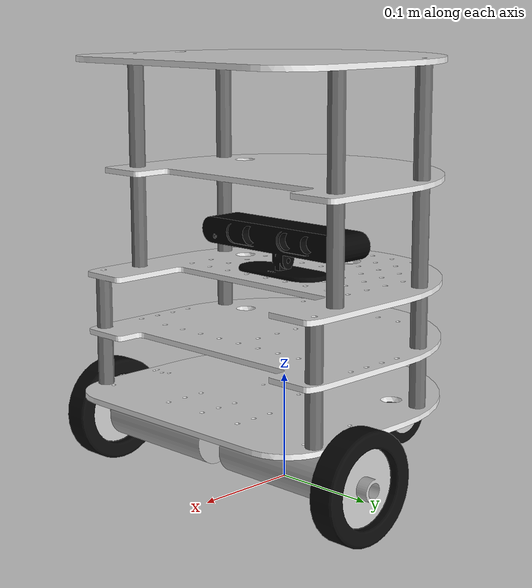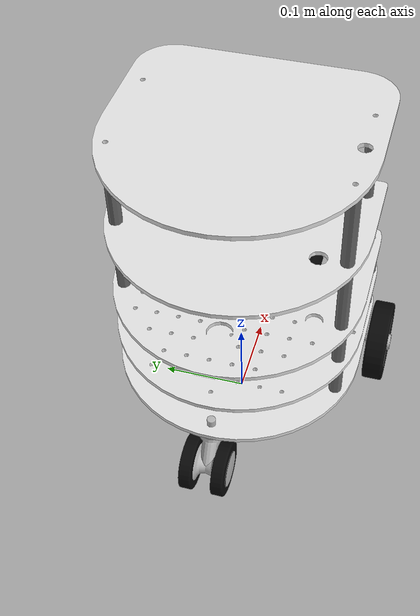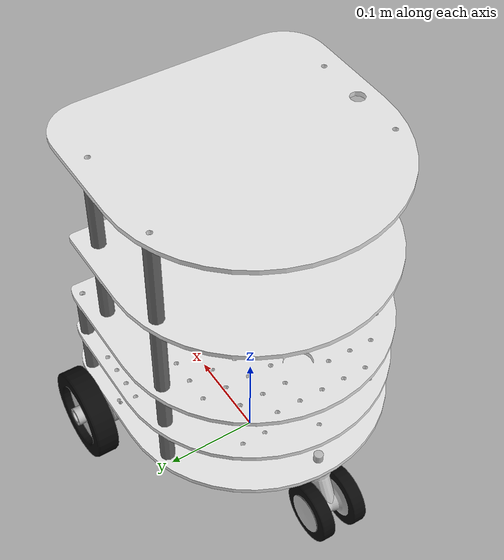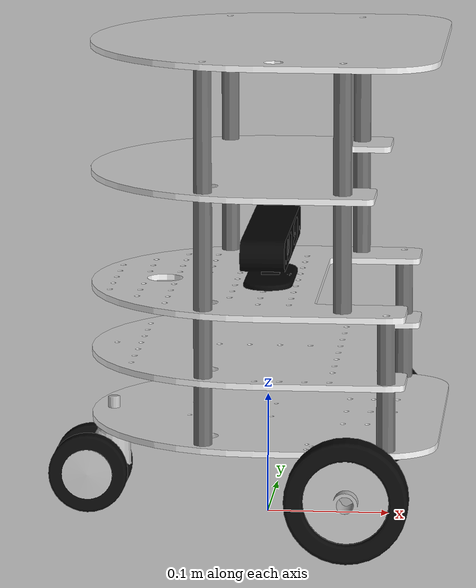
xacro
<?xml version="1.0"?>

<robot xmlns:xacro="http://www.ros.org/wiki/xacro" name="tortuga_description">
  <xacro:include filename="$(find tortuga_description)/urdf/tortuga_base.xacro"/>
  <xacro:include filename="$(find tortuga_description)/urdf/tortuga_motors.xacro"/>
  <xacro:include filename="$(find tortuga_description)/urdf/tortuga_wheels.xacro"/>
  <xacro:include filename="$(find tortuga_description)/urdf/tortuga_sensors.xacro"/>

  <xacro:property name="PI" value="3.141592654" />
  <link name="base_footprint"/>

  <tortuga_base_macro name="base" parent="base_footprint"/>

  <tortuga_motor_macro parent="base_left_motor_out" name="left_motor">
      <axis xyz="0 0 -1"/>
  </tortuga_motor_macro>
  <tortuga_motor_macro parent="base_right_motor_out" name="right_motor">
      <axis xyz="0 0 1"/>
  </tortuga_motor_macro>

  <tortuga_wheel_macro parent="left_motor_out" name="left_wheel"/>
  <tortuga_wheel_macro parent="right_motor_out" name="right_wheel"/>

  <tortuga_xtion_macro name="xtion_cam" parent="base_link">
      <origin xyz="0.02 0.0 -0.0418" rpy="0.0 0.0 0.0"/>
  </tortuga_xtion_macro>
  <tortuga_back_wheel_macro parent="base_back_wheel_out" name="back_wheel"/>

</robot>

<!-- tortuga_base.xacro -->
<robot name="tortuga_base" xmlns:xacro="http://ros.org/wiki/xacro">

  <xacro:macro name="tortuga_base_macro" params="name parent">
    <link name="${name}_link">
      <visual>
        <geometry>
          <mesh filename="package://tortuga_description/meshes/tortuga_base.dae"/>
        </geometry>
      </visual>
      <collision>
        <geometry>
	  <cylinder radius="0.146" length="0.314"/>
	</geometry>
      </collision>
      <inertial>
	<origin xyz="0 0 -0.2" rpy="0 0 0" />
      <mass
	value="1000" /> <!-- TODO FIND OUT WHY THE MASS MUST BE THAT HIGH -->
      <inertia
        ixx="0.1354533" ixy="0" ixz="0"
        iyy="0.1354533" iyz="0"
        izz="-0.10658" />
    </inertial>
    </link>

    <joint name="${name}_main_joint" type="fixed">
      <origin xyz="0.0 0.0 0.2385" rpy="0.0 0.0 0"/>
      <parent link="${parent}"/>
      <child link="${name}_link"/>
    </joint>

    <link name="${name}_left_motor_out"/>
    <link name="${name}_right_motor_out"/>
    <!-- FIXME -->
    <link name="${name}_back_wheel_out">
      <inertial>
	<origin xyz="0 0 0" rpy="0 0 0" />
	<mass
	  value="0.001" />
	<inertia
	  ixx="0.000000001" ixy="0" ixz="0"
	  iyy="0.000000001" iyz="0"
	  izz="0.000000001" />
      </inertial>
    </link>

    <joint name="${name}_left_motor_joint" type="fixed">
      <origin xyz="0.075 -0.08 -0.188" rpy="0.0 0.0 0.0"/>
      <parent link="${name}_link"/>
      <child link="${name}_left_motor_out"/>
    </joint>

    <joint name="${name}_right_motor_joint" type="fixed">
      <origin xyz="0.075 0.08 -0.188" rpy="0.0 0.0 ${PI}"/>
      <parent link="${name}_link"/>
      <child link="${name}_right_motor_out"/>
    </joint>

    <joint name="${name}_back_wheel_joint" type="fixed">
      <origin xyz="-0.128 0.0 -0.1442" rpy="0.0 0.0 0.0"/>
      <parent link="${name}_link"/>
      <child link="${name}_back_wheel_out"/>
    </joint>
  </xacro:macro>
</robot>

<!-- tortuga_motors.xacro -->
<robot name="tortuga_motors" xmlns:xacro="http://ros.org/wiki/xacro">

  <xacro:macro name="tortuga_motor_macro" params="name parent *axis">
    <link name="${name}_in">
      <visual>
        <geometry>
          <mesh filename="package://tortuga_description/meshes/tortuga_motor.dae"  />
        </geometry>
      </visual>
      <inertial>
	<origin xyz="0 0 0" rpy="0 0 0" />
	<mass
	  value="0.001" />
	<inertia
	  ixx="0.000000001" ixy="0" ixz="0"
	  iyy="0.000000001" iyz="0"
	  izz="0.000000001" />
      </inertial>
    </link>
    <joint name="${name}_in_joint" type="fixed">
      <origin xyz="0.0 0.0 0.0" rpy="0.0 0.0 0.0"/>
      <parent link="${parent}"/>
      <child link="${name}_in"/>
    </joint>
    <link name="${name}_out"/>

    <joint name="${name}_out_joint" type="fixed">
      <origin xyz="0.0 -0.08 0.0" rpy="${0.5 * PI} 0.0 0.0"/>
      <parent link="${name}_in"/>
      <child link="${name}_out"/>
    </joint>
  </xacro:macro>
</robot>

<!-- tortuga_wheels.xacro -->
<robot name="tortuga_motors" xmlns:xacro="http://ros.org/wiki/xacro">

  <xacro:macro name="tortuga_wheel_macro" params="name parent">
    <link name="${name}_link">

      <visual>
        <geometry>
          <mesh filename="package://tortuga_description/meshes/tortuga_wheel.dae"  />
        </geometry>
      </visual>
      <collision>
        <geometry>

	  <cylinder radius="0.05" length="0.03"/>
	</geometry>
      </collision>
      <inertial>
	<origin xyz="0 0 0" rpy="0 0 0" />
      <mass
        value="0.1" />
      <inertia
        ixx="0.00007" ixy="0" ixz="0"
        iyy="0.00007" iyz="0"
        izz="0.000125" />
    </inertial>
    </link>
    <gazebo reference="${name}_link">
    <mu1 value="200.0"/>
    <mu2 value="100.0"/>
    <kp value="1000000.0"/>
    <kd value="1.0"/>
  </gazebo>
    <joint name="${name}_in_joint" type="fixed">
      <origin xyz="0.0 0.0 0.0" rpy="0.0 0.0 0.0"/>
      <parent link="${parent}"/>
      <child link="${name}_link"/>
    </joint>

  </xacro:macro>

  <xacro:macro name="tortuga_back_wheel_macro1" params="name parent">

    <link name="${name}_link">
      <visual>
        <geometry>
          <mesh filename="package://tortuga_description/meshes/tortuga_front_wheel.dae"  />
        </geometry>
      </visual>
      <collision>
        <geometry>

	  <cylinder radius="0.0325" length="0.056"/>
	</geometry>
      </collision>
      <inertial>
	<origin xyz="0 0 0" rpy="0 0 0" />
	<mass
	  value="0.1" />
	<inertia
	  ixx="0.00005253" ixy="0" ixz="0"
	  iyy="0.00005253" iyz="0"
	  izz="0.0000528" />
      </inertial>
    </link>
    <joint name="${name}_wheel_joint" type="continuous">

        <origin xyz="-0.02 0.0 -0.06" rpy="${0.5 *PI} 0.0 0.0"/>
      <parent link="${parent}"/>
      <child link="${name}_link"/>
      <axis xyz="0 0 1"/>
      <limit effort="100" velocity="200"/>
    </joint>
    <gazebo reference="${name}_link_joint">
      <kp>1000000000</kp>
      <kd>1000000000</kd>
    </gazebo>

    <transmission name="${name}_wheel_transmission">
        <type>transmission_interface/SimpleTransmission</type>
        <joint name="${name}_wheel_joint">
	  <hardwareInterface>EffortJointInterface</hardwareInterface>
	</joint>
        <actuator name="${name}_wheel_motor">
	  <hardwareInterface>EffortJointInterface</hardwareInterface>
            <mechanicalReduction>100</mechanicalReduction>
        </actuator>
    </transmission>
  </xacro:macro>

  <xacro:macro name="tortuga_back_wheel_macro" params="name parent">

    <link name="${name}_hinge">
      <visual>
        <geometry>
          <mesh filename="package://tortuga_description/meshes/tortuga_front_wheel_hinge.dae"  />
        </geometry>
      </visual>
      <visual>

        <origin xyz="-0.02 0.0 -0.06" rpy="${0.5 *PI} 0.0 0.0"/>
        <geometry>
          <mesh filename="package://tortuga_description/meshes/tortuga_front_wheel.dae"  />
        </geometry>
      </visual>

      <collision>
        <origin xyz="-0.02 0.0 -0.06" rpy="${0.5 *PI} 0.0 0.0"/>
        <geometry>

          <sphere radius="0.0325"/>
        </geometry>
      </collision>
      <inertial>
        <origin xyz="0 0 -0.018" rpy="0 0 0" />
        <mass
          value="0.01" />
        <inertia
          ixx="0.0000001" ixy="0" ixz="0"
          iyy="0.0000001" iyz="0"
          izz="0.0000001" />
      </inertial>
    </link>

    <gazebo reference="${name}_hinge">
      <mu1>0.1</mu1>
      <mu2>0.1</mu2>
    </gazebo>
    <joint name="${name}_hinge_joint" type="fixed">
      <origin xyz="0.0 0.0 0.0" rpy="0.0 0.0 0.0"/>
      <parent link="${parent}"/>
      <child link="${name}_hinge"/>
      <axis xyz="0 0 1"/>
      <limit effort="100" velocity="200"/>
      <dynamics damping="0.0" friction="0.0"/>
    </joint>
    <transmission name="${name}_hinge_transmission">
        <type>transmission_interface/SimpleTransmission</type>
        <joint name="${name}_hinge_joint">
          <hardwareInterface>EffortJointInterface</hardwareInterface>
        </joint>
        <actuator name="${name}_hinge__motor">
          <hardwareInterface>EffortJointInterface</hardwareInterface>
            <mechanicalReduction>100</mechanicalReduction>
        </actuator>
    </transmission>

  </xacro:macro>
</robot>

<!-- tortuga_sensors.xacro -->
<robot name="tortuga_motors" xmlns:xacro="http://ros.org/wiki/xacro">

  <xacro:macro name="tortuga_xtion_macro" params="name parent *origin">
    <link name="${name}_link">
      <visual>
        <geometry>
          <mesh filename="package://tortuga_description/meshes/tortuga_xtion.dae"  />
        </geometry>
      </visual>
      <collision>
        <geometry>
          <mesh filename="package://tortuga_description/meshes/tortuga_xtion.dae"  />
	</geometry>
      </collision>
      <inertial>
	<origin xyz="0 0 0" rpy="0 0 0" />
      <mass
        value="0.01" />
      <inertia
        ixx="0.00001" ixy="0" ixz="0"
        iyy="0.00001" iyz="0"
        izz="0.00001" />
    </inertial>
    </link>

    <joint name="${name}_joint" type="fixed">
      <insert_block name="origin" />
      <parent link="${parent}"/>
      <child link="${name}_link"/>
    </joint>

      <joint name="${name}_depth_joint" type="fixed">
        <origin xyz="0.0 0.049 0.0" rpy="0 0 0" />
        <parent link="${name}_link" />
        <child link="${name}_depth_frame"/>
      </joint>

      <link name="${name}_depth_frame"/>

      <joint name="${name}_depth_optical_joint" type="fixed">
        <origin xyz="0 0 0" rpy="${-PI/2} 0.0 ${-PI/2}" />
        <parent link="${name}_depth_frame" />
        <child link="${name}_depth_optical_frame"/>
      </joint>

      <link name="${name}_depth_optical_frame"/>

      <joint name="${name}_rgb_joint" type="fixed">
        <origin xyz="0.0 0.022 0.0" rpy="0 0 0" />
        <parent link="${name}_link" />
        <child link="${name}_rgb_frame"/>
      </joint>

      <link name="${name}_rgb_frame"/>

      <joint name="${name}_rgb_optical_joint" type="fixed">
        <origin xyz="0 0 0" rpy="${-PI/2} 0.0 ${-PI/2}" />
        <parent link="${name}_rgb_frame" />
        <child link="${name}_rgb_optical_frame"/>
      </joint>

      <link name="${name}_rgb_optical_frame"/>

  </xacro:macro>
</robot>
